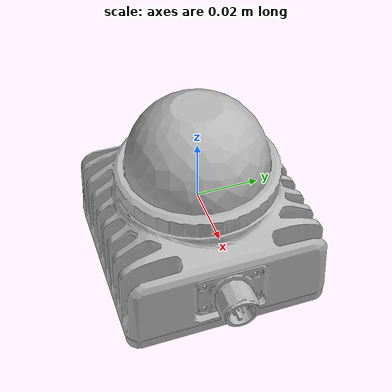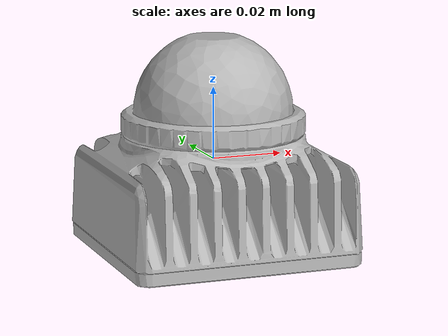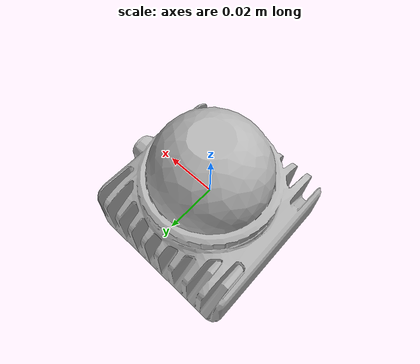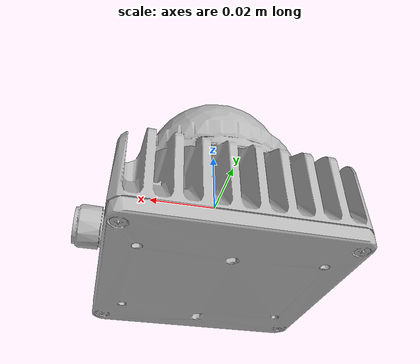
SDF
<?xml version="1.0" ?>
<sdf version="1.6">
  <model name="livox_mid360">
    <link name="link">
      <pose>0 0 0 0 0 0</pose>
      <inertial>
        <pose>0 0 0.0435 0 0 0</pose>
        <mass>0.265</mass>
        <inertia>
          <ixx>0.00034437749999999994</ixx>
          <ixy>0</ixy>
          <ixz>0</ixz>
          <iyy>0.00034437749999999994</iyy>
          <iyz>0</iyz>
          <izz>0.00022199999999999998</izz>
        </inertia>
      </inertial>
      <collision name="base_link_collision">
        <geometry>
          <mesh>
            <uri>model://livox_mid360/meshes/livox_resized.stl</uri>
          </mesh>
        </geometry>
      </collision>
      <visual name="visual">
        <geometry>
          <mesh>
            <uri>model://livox_mid360/meshes/livox_resized.stl</uri>
          </mesh>
        </geometry>
      </visual>
        <sensor name="RGLsensor" type="custom">
          <plugin filename="RGLServerPluginInstance" name="rgl::RGLServerPluginInstance">
            <range>
              <min>1</min>
              <max>100</max>
            </range>
            <update_rate>10</update_rate>
            <update_on_paused_sim>false</update_on_paused_sim>
            <topic>rgl_lidar</topic>
            <frame>RGLLidar</frame>
            <pattern_preset>Livox Mid360</pattern_preset>
          </plugin>
        </sensor>
    </link>
  </model>
</sdf>
